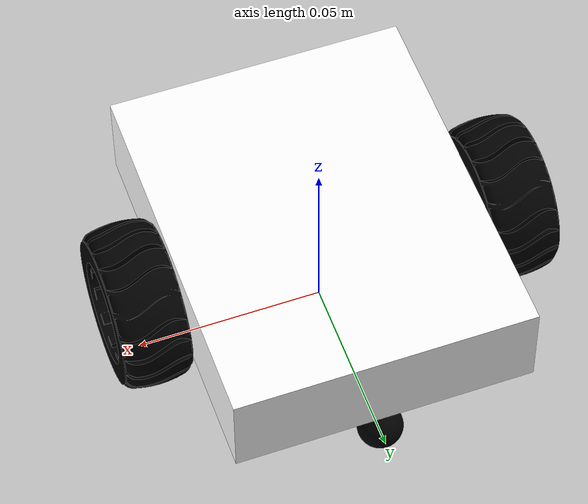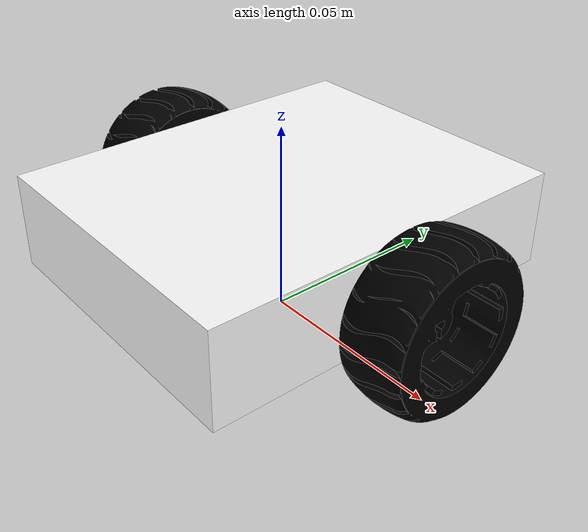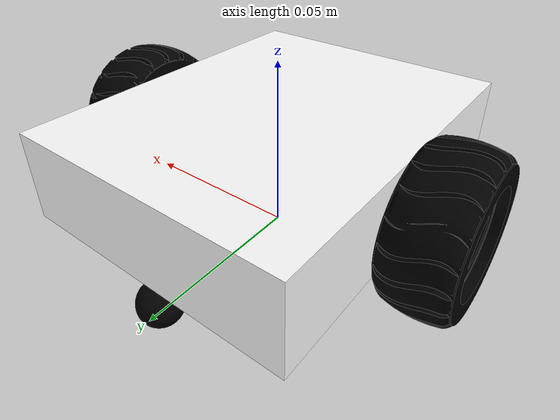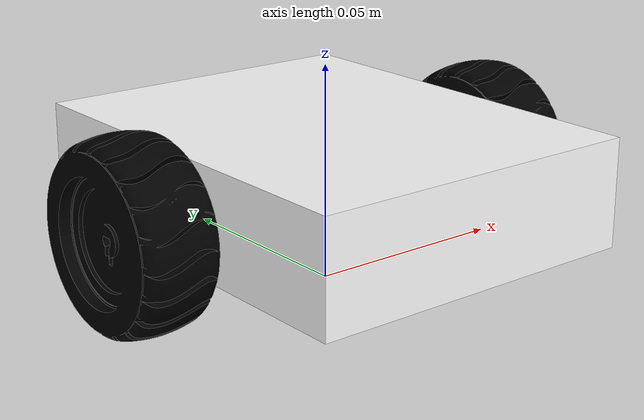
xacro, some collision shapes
<?xml version="1.0"?>
<robot name="my_robot1" xmlns:xacro="http://www.ros.org/wiki/xacro">

  <!-- 底盘 -->
  <link name="base_link">
    <visual>
      <origin xyz="-0.05 -0.05 0.00" rpy="0.0 0.0 0.0"/>
      <geometry>
        <mesh filename="$(find diff_gz_nav2)/model/body.STL" scale="0.001 0.001 0.001"/>
      </geometry>
      <material name="write">
        <color rgba="1.0 1.0 1.0 1.0"/>
      </material>
    </visual>
    <collision>
      <origin xyz="0.0 0.0 0.025" rpy="0.0 0.0 1.5708"/>
      <geometry>
        <box size="0.1 0.08 0.025"/>
      </geometry>
    </collision>
    <inertial>
      <mass value="1.0"/>
      <origin xyz="0 0 0.0" rpy="0 0 0"/>
      <inertia ixx="0.01" ixy="0" ixz="0" iyy="0.01" iyz="0" izz="0.01"/>
    </inertial>
  </link>

  <!-- 左轮 -->
  <link name="lw_link">
    <visual>
      <origin xyz="-0.009 -0.0215 -0.0215" rpy="0.0 0.0 0.0"/>
      <geometry>
        <mesh filename="$(find diff_gz_nav2)/model/wheel.STL" scale="0.001 0.001 0.001 "/>
      </geometry>
      <material name="black">
        <color rgba="0.0 0.0 0.0 1.0"/>
      </material>
    </visual>
    <collision>
      <origin xyz="0.0 0.0 0.0" rpy="0 1.57 0.0"/>
      <geometry>
        <cylinder radius="0.021" length="0.018"/>
      </geometry>
    </collision>
    <inertial>
      <mass value="0.3"/>
      <origin xyz="0 0 0.0" rpy="0 0 0"/>
      <inertia ixx="0.003" ixy="0" ixz="0" iyy="0.003" iyz="0" izz="0.003"/>
    </inertial>
  </link>

  <!-- 右轮 -->
  <link name="rw_link">
    <visual>
      <origin xyz="-0.009 -0.0215 -0.0215" rpy="0.0 0.0 0.0"/>
      <geometry>
        <mesh filename="$(find diff_gz_nav2)/model/wheel.STL" scale="0.001 0.001 0.001"/>
      </geometry>
      <material name="black">
        <color rgba="0.0 0.0 0.0 1.0"/>
      </material>
    </visual>
    <collision>
      <origin xyz="0.0 0.0 0.0" rpy="0.0 1.57 0.0"/>
      <geometry>
        <cylinder radius="0.021" length="0.018"/>
      </geometry>
    </collision>
    <inertial>
      <mass value="0.3"/>
      <origin xyz="0 0 0.0" rpy="0 0 0"/>
      <inertia ixx="0.003" ixy="0" ixz="0" iyy="0.003" iyz="0" izz="0.003"/>
    </inertial>
  </link>

   <!-- wanxiang -->
  <link name="w_link">
    <visual>
      <origin xyz="-0.006 -0.006 -0.006" rpy="0.0 0.0 0.0"/>
      <geometry>
        <mesh filename="$(find diff_gz_nav2)/model/ball.STL" scale="0.001 0.001 0.001"/>
      </geometry>
      <material name="black">
        <color rgba="0.0 0.0 0.0 1.0"/>
      </material>
    </visual>
    <collision>
      <origin xyz="-0.0 -0.0 -0.0" rpy="0.0 0.0 0.0"/>
      <geometry>
        <sphere  radius="0.006"/>
      </geometry>
    </collision>
    <inertial>
      <mass value="0.3"/>
      <origin xyz="0 0 0.0" rpy="0 0 0"/>
      <inertia ixx="0.003" ixy="0" ixz="0" iyy="0.003" iyz="0" izz="0.003"/>
    </inertial>
  </link>

  <!-- 左轮关节 -->
  <joint name="left_wheel" type="continuous">
    <parent link="base_link"/><child link="lw_link"/>
    <origin xyz="-0.05 0 0.02" rpy="0 0 0"/><axis xyz="1 0 0"/>
  </joint>

  <!-- 右轮关节 -->
  <joint name="right_wheel" type="continuous">
    <parent link="base_link"/><child link="rw_link"/>
    <origin xyz="0.05 0 0.02" rpy="0 0 0"/><axis xyz="1 0 0"/>
  </joint>

  <joint name="w_joint" type="fixed">
    <parent link="base_link"/><child link="w_link"/>
    <origin xyz="0.00 0.046 0.003" rpy="0 0 0"/><axis xyz="0 0 0"/>
  </joint>

<ros2_control name="GazeboSimSystem" type="system">
    <hardware>
      <plugin>gz_ros2_control/GazeboSimSystem</plugin>
    </hardware>
    <joint name="left_wheel">
      <command_interface name="velocity">
        <param name="min">-1</param>
        <param name="max">1</param>
      </command_interface>
      <state_interface name="position"/>
      <state_interface name="velocity"/>
    </joint>
    <joint name="right_wheel">
      <command_interface name="velocity">
        <param name="min">-1</param>
        <param name="max">1</param>
      </command_interface>
      <state_interface name="position"/>
      <state_interface name="velocity"/>
    </joint>
  </ros2_control>

  <gazebo>
    <plugin filename="gz_ros2_control-system" name="gz_ros2_control::GazeboSimROS2ControlPlugin">
      <ros>
        <namespace>$(arg namespace)</namespace>
      </ros>
      <parameters>$(find my_robot_bringup)/config/diff_control.yaml</parameters>
    </plugin>
  </gazebo>

</robot>
